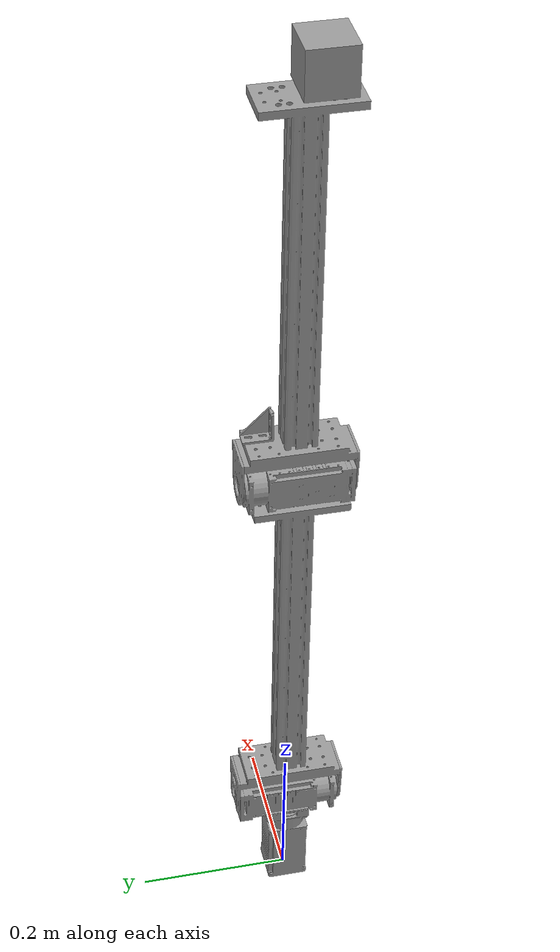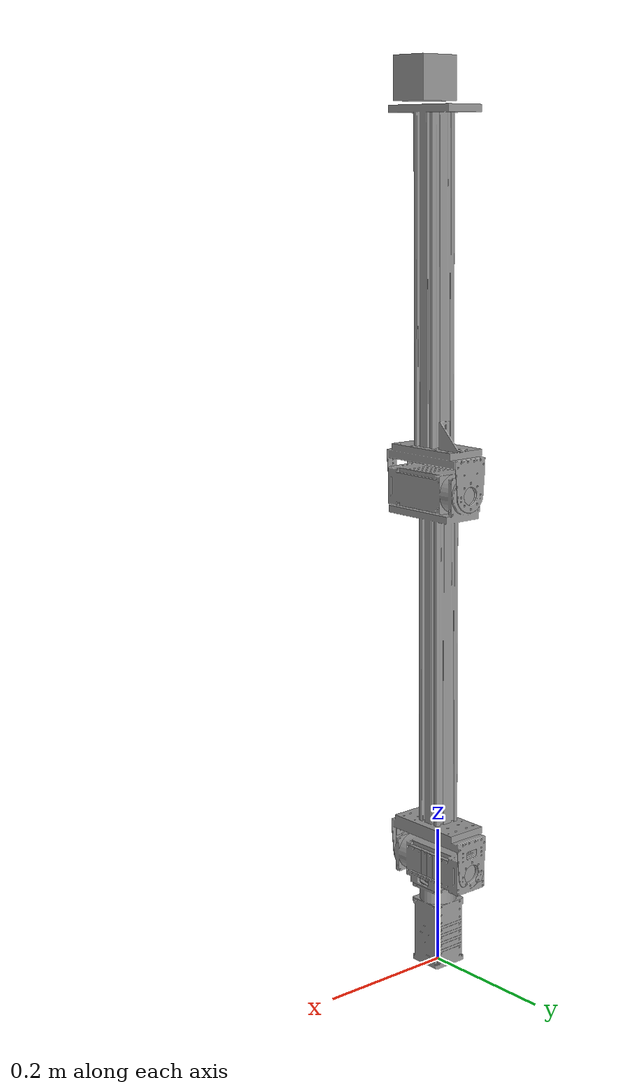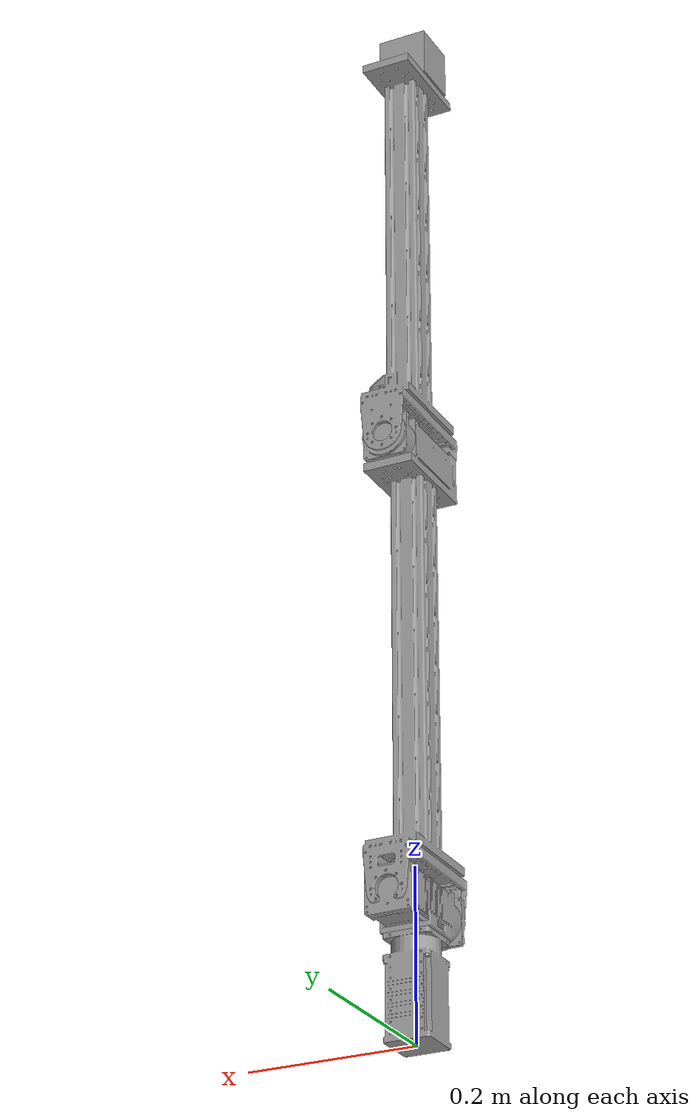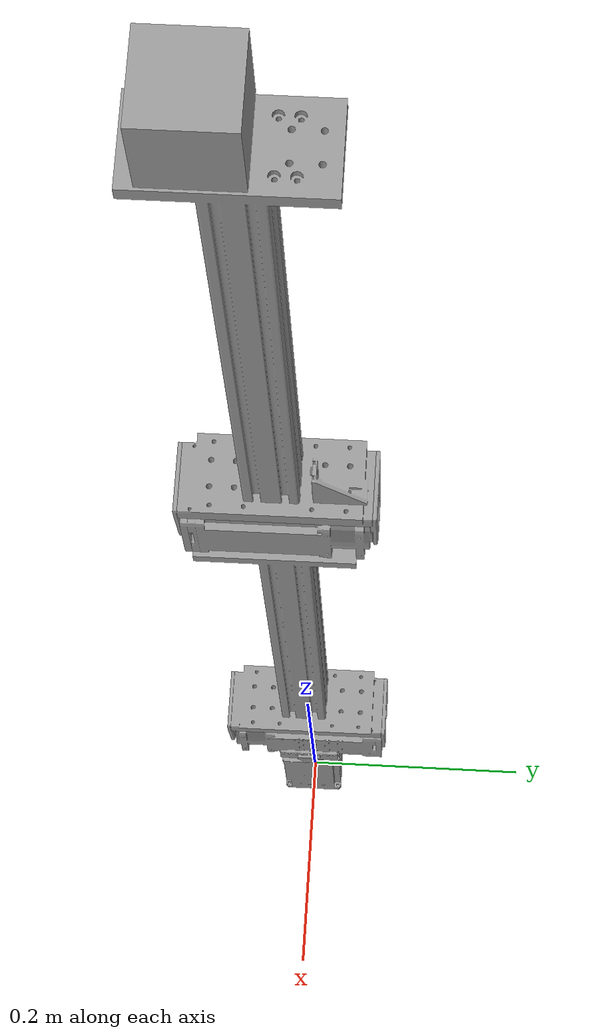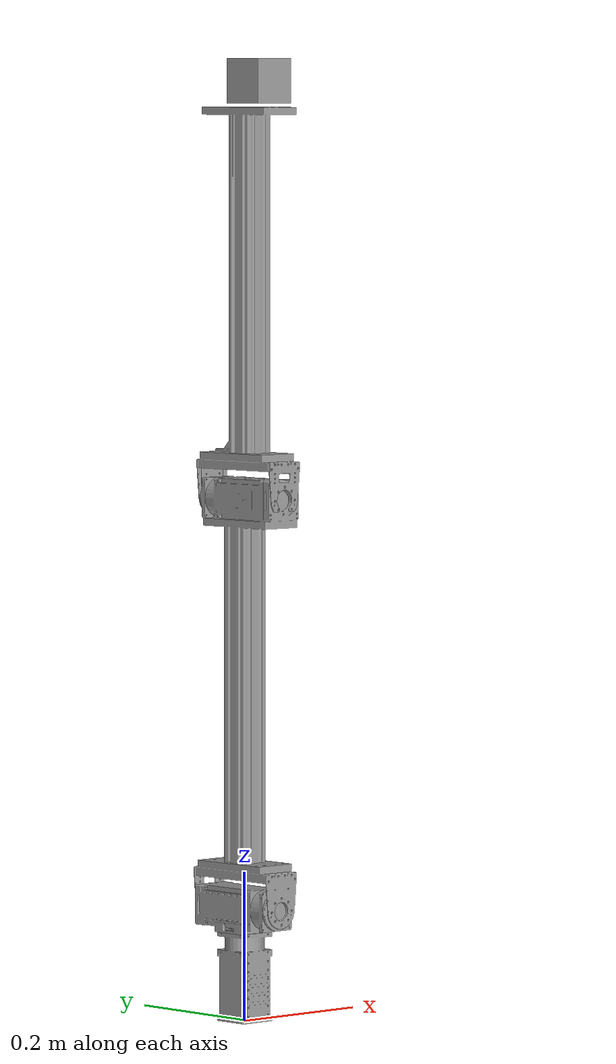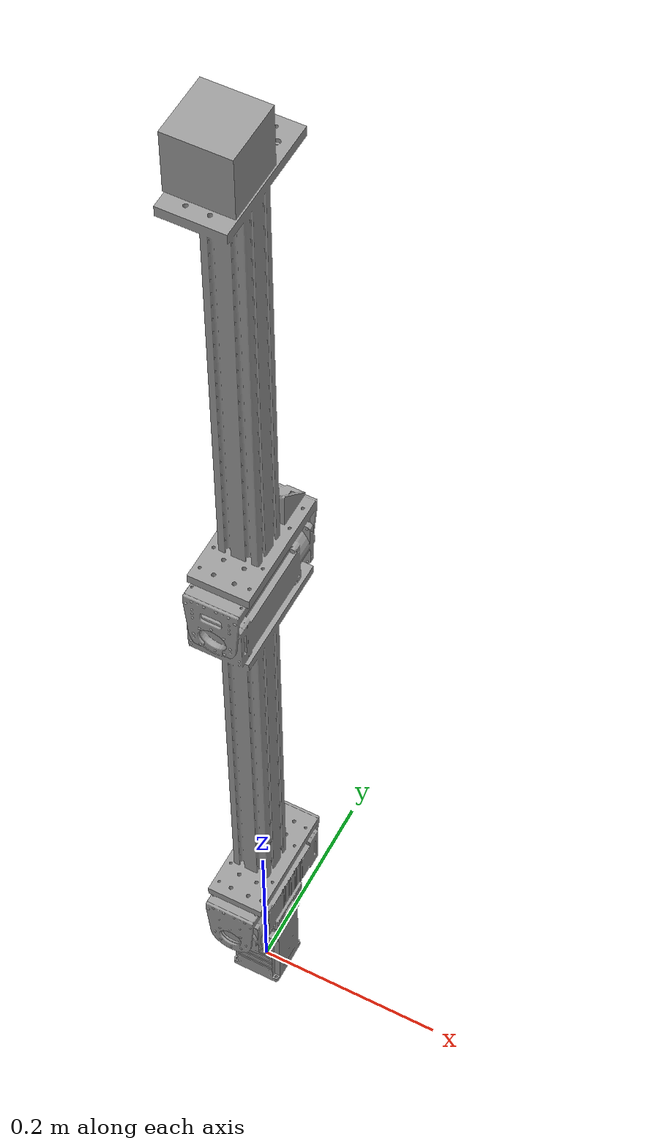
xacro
<?xml version="1.0"?>
<!-- Revolute-Revolute Manipulator -->
<robot name="robotis_manipulator_h" xmlns:xacro="http://www.ros.org/wiki/xacro">

  <!-- some parameters -->
  <xacro:property name="pi" value="3.141592654" />

  <!-- some parameters -->
  <xacro:property name="pi" value="3.141592654" />

  <!-- Import all Gazebo-customization elements, including Gazebo colors -->
  <xacro:include filename="$(find manipulator_h_description)/urdf/manipulator_h.gazebo" />
  <!-- Import Rviz colors -->
  <xacro:include filename="$(find manipulator_h_description)/urdf/materials.xacro" />

  <!-- Used for fixing robot to Gazebo 'link 1' -->
 <link name="world">
  </link>

  <joint name="world_fixed" type="fixed">
    <origin xyz="0 0 0" rpy="0 0 0"/>
    <parent link="world"/>
    <child link="link_1"/>
  </joint>

  <!-- link 1 -->
  <link name="link_1">
    <collision>
      <origin xyz="0 0 0" rpy="0 0 0"/>
      <geometry>
        <mesh filename="package://manipulator_h_description/meshes/link_1.stl" />
      </geometry>
    </collision>

    <visual>
      <origin xyz="0 0 0" rpy="0 0 0"/>
      <geometry>
        <mesh filename="package://manipulator_h_description/meshes/link_1.stl" />
      </geometry>
      <material name="grey"/>
    </visual>

    <inertial>
      <origin xyz="-6.38743521995389E-06 -4.43861822296832E-11 0.0608318718478432" rpy="0 0 0"/>

      <mass value="0.855"/>
       <inertia

                   ixx="1273676.57e-9"
                   ixy="0"
                   ixz="0"
                   iyy="1272091.46e-9"
                   iyz="173.33e-9"
                   izz="375253.31e-9" />

    </inertial>
  </link>

  <!-- Joint 1 -->
  <joint name="joint1" type="revolute">
    <parent link="link_1"/>
    <child link="link_2"/>
    <origin xyz="0.0 0.0 0.12" rpy="0 0 0"/>
    <axis xyz="0 0 1"/>
    <limit velocity="6.5" effort="1000" lower="-3.14" upper="3.14" />
    <dynamics damping="1"/>
  </joint>

  <transmission name="tran1">
    <type>transmission_interface/SimpleTransmission</type>
    <joint name="joint1">
      <hardwareInterface>EffortJointInterface</hardwareInterface>
    </joint>
    <actuator name="motor1">
      <hardwareInterface>EffortJointInterface</hardwareInterface>
      <mechanicalReduction>1</mechanicalReduction>
    </actuator>
  </transmission>

  <!-- link 2 -->
  <link name="link_2">
    <collision>
      <origin xyz="0 0 0" rpy="0 0 0"/>
      <geometry>
        <mesh filename="package://manipulator_h_description/meshes/link_2.stl"/>
      </geometry>
    </collision>

    <visual>
      <origin xyz="0 0 0" rpy="0 0 0"/>
      <geometry>
        <mesh filename="package://manipulator_h_description/meshes/link_2.stl"/>
      </geometry>
      <material name="grey"/>
    </visual>

    <inertial>
      <origin

        xyz="-4.14934198111894E-11 -0.000325967598113923 0.0321402876424691"

        rpy="0 0 0" />
      <mass value="0.934"/>
      <inertia

               ixx="1537602.80e-9"
               ixy="-0.03e-9"
               ixz="0"
               iyy="1525990.95e-9"
               iyz="-36.60e-9"
               izz="445727.51e-9" />
    </inertial>
  </link>

  <!-- Joint 2 -->
  <joint name="joint2" type="revolute">
    <parent link="link_2"/>
    <child link="link_3"/>
    <origin xyz="0.0 0 0.01" rpy="0 0 0"/>
    <axis xyz="0 1 0"/>
    <limit velocity="6.5" effort="1000" lower="-3.14" upper="3.14" />
    <dynamics damping="1"/>
  </joint>

  <transmission name="tran2">
    <type>transmission_interface/SimpleTransmission</type>
    <joint name="joint2">
      <hardwareInterface>EffortJointInterface</hardwareInterface>
    </joint>
    <actuator name="motor2">
      <hardwareInterface>EffortJointInterface</hardwareInterface>
      <mechanicalReduction>1</mechanicalReduction>
    </actuator>
  </transmission>

  <!-- link 3 -->
  <link name="link_3">
    <collision>
      <origin xyz="0 0 0" rpy="0 0 0"/>
      <geometry>
        <mesh filename="package://manipulator_h_description/meshes/link_3.stl"/>
      </geometry>
    </collision>

    <visual>
      <origin xyz="0 0 0" rpy="0 0 0"/>
      <geometry>
        <mesh filename="package://manipulator_h_description/meshes/link_3.stl"/>
      </geometry>
      <material name="grey"/>
    </visual>

    <inertial>
      <origin

        xyz="0.00132369141952546 -0.00322509695531026 0.398031886628976"

        rpy="0 0 0" />
      <mass value="2.0"/>
      <inertia

            izz="2319398.31e-9"
            ixy="-4029.80e-9"
            ixz="-411147.41e-9"
            iyy="85204850.14e-9"
            iyz="137.88e-9"
            ixx="83804990.37e-9" />
    </inertial>
  </link>

  <!-- Joint 3 -->
  <joint name="joint3" type="revolute">
    <parent link="link_3"/>
    <child link="link_4"/>
    <origin xyz="0.003000 0.06571150 0.571400" rpy="0 0 0"/>
    <axis xyz="0 1 0"/>
    <limit velocity="6.5" effort="1000" lower="-3.14" upper="3.14" />
    <dynamics damping="1"/>
  </joint>

  <transmission name="tran3">
    <type>transmission_interface/SimpleTransmission</type>
    <joint name="joint3">
      <hardwareInterface>EffortJointInterface</hardwareInterface>
    </joint>
    <actuator name="motor3">
      <hardwareInterface>EffortJointInterface</hardwareInterface>
      <mechanicalReduction>1</mechanicalReduction>
    </actuator>
  </transmission>

  <!-- link 4 -->
  <link name="link_4">
    <collision>
      <origin xyz="0 0 0" rpy="0 0 0"/>
      <geometry>
        <mesh filename="package://manipulator_h_description/meshes/link_4.stl"/>
      </geometry>
    </collision>

    <visual>
      <origin xyz="0 0 0" rpy="0 0 0"/>
      <geometry>
        <mesh filename="package://manipulator_h_description/meshes/link_4.stl"/>
      </geometry>
      <material name="grey"/>
    </visual>

    <inertial>
      <origin

        xyz="0.000192286862973748 -0.0691492696212278 0.28395137691921"

        rpy="0 0 0" />
      <mass value="1.23"/>
       <inertia

                      izz="1226293.96e-9"
                      ixy="-1927.47e-9"
                      ixz="-119143.05e-9"
                      iyy="43530598.46e-9"
                      iyz="8.61e-9"
                      ixx="42869469.56e-9" />
    </inertial>

  </link>

  <!-- end_link -->
  <link name="end_link">
    <collision>
      <origin xyz="0 0 0" rpy="0 0 0"/>
      <geometry>
      <box size  = "0.06 0.06 0.06"/>
      </geometry>
    </collision>

    <visual>
      <origin xyz="0 0 0" rpy="0 0 0"/>
      <geometry>
      <box size = "0.06 0.06 0.06"/>
      </geometry>
      <material name="grey"/>
    </visual>

    <inertial>
      <origin xyz="0 0 0" rpy="0 0 0"/>

      <mass value="0"/>
       <inertia

                   ixx="0"
                   ixy="0"
                   ixz="0"
                   iyy="0"
                   iyz="0"
                   izz="0" />

    </inertial>
  </link>

  <!-- Joint 4 -->
  <joint name="end_joint" type="fixed">
    <parent link="link_4"/>
    <child link="end_link"/>
    <origin xyz="0.0 -0.09 0.556" rpy="0 0 0"/>
    <limit velocity="6.5" effort="1000" lower="-3.14" upper="3.14" />
  </joint>

  <gazebo>
    <plugin name="gazebo_ros_control" filename="libgazebo_ros_control.so">
      <robotSimType>gazebo_ros_control/DefaultRobotHWSim</robotSimType>
      <legacyModeNS>true</legacyModeNS>
    </plugin>
  </gazebo>

</robot>
